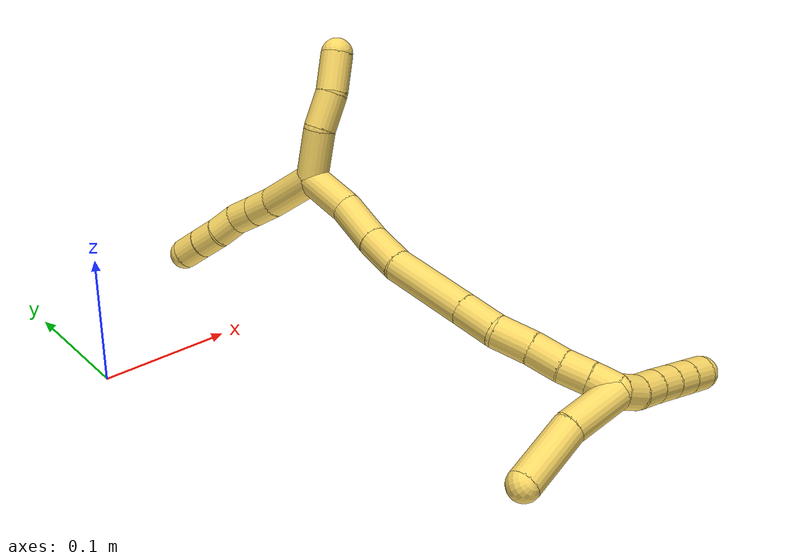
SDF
<sdf version="1.7">
 <world name="default">
  <model name="5">
   <static>0</static>
   <link name="5">
    <collision name="collision-cylinder-e_1_2_8">
     <pose>-0.002248 0.002984 -0.023393 -3.0147 -0.095018 1.28493</pose>
     <geometry><cylinder><radius>0.0125</radius><length>0.047379</length></cylinder></geometry>
     <surface>
      <friction><ode><mu>1.16</mu><mu2>1.16</mu2><slip1>0</slip1><slip2>0</slip2></ode></friction>
      <contact><ode><kp>1e+06</kp><kd>1</kd><max_vel>0</max_vel><min_depth>0.001</min_depth></ode></contact>
     </surface>
    </collision>
    <visual name="visual-cylinder-e_1_2_8">
     <pose>-0.002248 0.002984 -0.023393 -3.0147 -0.095018 1.28493</pose>
     <geometry><cylinder><radius>0.0125</radius><length>0.047379</length></cylinder></geometry>
     <material><ambient>1 0.858824 0.4 1</ambient></material>
    </visual>
    <collision name="collision-cylinder-e_2_8_9">
     <pose>-0.006379 0.008098 -0.057005 -2.93617 -0.178581 1.43037</pose>
     <geometry><cylinder><radius>0.0125</radius><length>0.021214</length></cylinder></geometry>
     <surface>
      <friction><ode><mu>1.16</mu><mu2>1.16</mu2><slip1>0</slip1><slip2>0</slip2></ode></friction>
      <contact><ode><kp>1e+06</kp><kd>1</kd><max_vel>0</max_vel><min_depth>0.001</min_depth></ode></contact>
     </surface>
    </collision>
    <visual name="visual-cylinder-e_2_8_9">
     <pose>-0.006379 0.008098 -0.057005 -2.93617 -0.178581 1.43037</pose>
     <geometry><cylinder><radius>0.0125</radius><length>0.021214</length></cylinder></geometry>
     <material><ambient>1 0.858824 0.4 1</ambient></material>
    </visual>
    <collision name="collision-cylinder-e_3_9_10">
     <pose>-0.010156 0.012506 -0.076856 -2.90923 -0.188932 1.36384</pose>
     <geometry><cylinder><radius>0.0125</radius><length>0.020153</length></cylinder></geometry>
     <surface>
      <friction><ode><mu>1.16</mu><mu2>1.16</mu2><slip1>0</slip1><slip2>0</slip2></ode></friction>
      <contact><ode><kp>1e+06</kp><kd>1</kd><max_vel>0</max_vel><min_depth>0.001</min_depth></ode></contact>
     </surface>
    </collision>
    <visual name="visual-cylinder-e_3_9_10">
     <pose>-0.010156 0.012506 -0.076856 -2.90923 -0.188932 1.36384</pose>
     <geometry><cylinder><radius>0.0125</radius><length>0.020153</length></cylinder></geometry>
     <material><ambient>1 0.858824 0.4 1</ambient></material>
    </visual>
    <collision name="collision-cylinder-e_4_10_11">
     <pose>-0.016479 0.015351 -0.095901 -3.08163 -0.439172 2.87445</pose>
     <geometry><cylinder><radius>0.0125</radius><length>0.020839</length></cylinder></geometry>
     <surface>
      <friction><ode><mu>1.16</mu><mu2>1.16</mu2><slip1>0</slip1><slip2>0</slip2></ode></friction>
      <contact><ode><kp>1e+06</kp><kd>1</kd><max_vel>0</max_vel><min_depth>0.001</min_depth></ode></contact>
     </surface>
    </collision>
    <visual name="visual-cylinder-e_4_10_11">
     <pose>-0.016479 0.015351 -0.095901 -3.08163 -0.439172 2.87445</pose>
     <geometry><cylinder><radius>0.0125</radius><length>0.020839</length></cylinder></geometry>
     <material><ambient>1 0.858824 0.4 1</ambient></material>
    </visual>
    <collision name="collision-cylinder-e_5_11_12">
     <pose>-0.023748 0.017224 -0.114874 -3.00556 -0.286123 2.25808</pose>
     <geometry><cylinder><radius>0.0125</radius><length>0.020114</length></cylinder></geometry>
     <surface>
      <friction><ode><mu>1.16</mu><mu2>1.16</mu2><slip1>0</slip1><slip2>0</slip2></ode></friction>
      <contact><ode><kp>1e+06</kp><kd>1</kd><max_vel>0</max_vel><min_depth>0.001</min_depth></ode></contact>
     </surface>
    </collision>
    <visual name="visual-cylinder-e_5_11_12">
     <pose>-0.023748 0.017224 -0.114874 -3.00556 -0.286123 2.25808</pose>
     <geometry><cylinder><radius>0.0125</radius><length>0.020114</length></cylinder></geometry>
     <material><ambient>1 0.858824 0.4 1</ambient></material>
    </visual>
    <collision name="collision-cylinder-e_6_12_6">
     <pose>-0.029067 0.019724 -0.134202 -3.02022 -0.246904 2.23088</pose>
     <geometry><cylinder><radius>0.0125</radius><length>0.0203</length></cylinder></geometry>
     <surface>
      <friction><ode><mu>1.16</mu><mu2>1.16</mu2><slip1>0</slip1><slip2>0</slip2></ode></friction>
      <contact><ode><kp>1e+06</kp><kd>1</kd><max_vel>0</max_vel><min_depth>0.001</min_depth></ode></contact>
     </surface>
    </collision>
    <visual name="visual-cylinder-e_6_12_6">
     <pose>-0.029067 0.019724 -0.134202 -3.02022 -0.246904 2.23088</pose>
     <geometry><cylinder><radius>0.0125</radius><length>0.0203</length></cylinder></geometry>
     <material><ambient>1 0.858824 0.4 1</ambient></material>
    </visual>
    <collision name="collision-cylinder-e_1_2_13">
     <pose>0.007239 0.012701 0.013339 -0.760869 0.374468 -0.151242</pose>
     <geometry><cylinder><radius>0.0125</radius><length>0.03958</length></cylinder></geometry>
     <surface>
      <friction><ode><mu>1.16</mu><mu2>1.16</mu2><slip1>0</slip1><slip2>0</slip2></ode></friction>
      <contact><ode><kp>1e+06</kp><kd>1</kd><max_vel>0</max_vel><min_depth>0.001</min_depth></ode></contact>
     </surface>
    </collision>
    <visual name="visual-cylinder-e_1_2_13">
     <pose>0.007239 0.012701 0.013339 -0.760869 0.374468 -0.151242</pose>
     <geometry><cylinder><radius>0.0125</radius><length>0.03958</length></cylinder></geometry>
     <material><ambient>1 0.858824 0.4 1</ambient></material>
    </visual>
    <collision name="collision-cylinder-e_2_13_14">
     <pose>0.023501 0.033175 0.035219 -0.738451 0.663288 -0.264957</pose>
     <geometry><cylinder><radius>0.0125</radius><length>0.029311</length></cylinder></geometry>
     <surface>
      <friction><ode><mu>1.16</mu><mu2>1.16</mu2><slip1>0</slip1><slip2>0</slip2></ode></friction>
      <contact><ode><kp>1e+06</kp><kd>1</kd><max_vel>0</max_vel><min_depth>0.001</min_depth></ode></contact>
     </surface>
    </collision>
    <visual name="visual-cylinder-e_2_13_14">
     <pose>0.023501 0.033175 0.035219 -0.738451 0.663288 -0.264957</pose>
     <geometry><cylinder><radius>0.0125</radius><length>0.029311</length></cylinder></geometry>
     <material><ambient>1 0.858824 0.4 1</ambient></material>
    </visual>
    <collision name="collision-cylinder-e_3_14_5">
     <pose>0.042118 0.051453 0.050048 -1.03135 0.664653 -0.38638</pose>
     <geometry><cylinder><radius>0.0125</radius><length>0.031109</length></cylinder></geometry>
     <surface>
      <friction><ode><mu>1.16</mu><mu2>1.16</mu2><slip1>0</slip1><slip2>0</slip2></ode></friction>
      <contact><ode><kp>1e+06</kp><kd>1</kd><max_vel>0</max_vel><min_depth>0.001</min_depth></ode></contact>
     </surface>
    </collision>
    <visual name="visual-cylinder-e_3_14_5">
     <pose>0.042118 0.051453 0.050048 -1.03135 0.664653 -0.38638</pose>
     <geometry><cylinder><radius>0.0125</radius><length>0.031109</length></cylinder></geometry>
     <material><ambient>1 0.858824 0.4 1</ambient></material>
    </visual>
    <collision name="collision-cylinder-e_1_2_15">
     <pose>-0.003218 -0.017258 0.008046 1.13454 -0.167401 -0.106804</pose>
     <geometry><cylinder><radius>0.0125</radius><length>0.038622</length></cylinder></geometry>
     <surface>
      <friction><ode><mu>1.16</mu><mu2>1.16</mu2><slip1>0</slip1><slip2>0</slip2></ode></friction>
      <contact><ode><kp>1e+06</kp><kd>1</kd><max_vel>0</max_vel><min_depth>0.001</min_depth></ode></contact>
     </surface>
    </collision>
    <visual name="visual-cylinder-e_1_2_15">
     <pose>-0.003218 -0.017258 0.008046 1.13454 -0.167401 -0.106804</pose>
     <geometry><cylinder><radius>0.0125</radius><length>0.038622</length></cylinder></geometry>
     <material><ambient>1 0.858824 0.4 1</ambient></material>
    </visual>
    <collision name="collision-cylinder-e_2_15_16">
     <pose>-0.015082 -0.050379 0.025121 1.05333 -0.442399 -0.260034</pose>
     <geometry><cylinder><radius>0.0125</radius><length>0.040394</length></cylinder></geometry>
     <surface>
      <friction><ode><mu>1.16</mu><mu2>1.16</mu2><slip1>0</slip1><slip2>0</slip2></ode></friction>
      <contact><ode><kp>1e+06</kp><kd>1</kd><max_vel>0</max_vel><min_depth>0.001</min_depth></ode></contact>
     </surface>
    </collision>
    <visual name="visual-cylinder-e_2_15_16">
     <pose>-0.015082 -0.050379 0.025121 1.05333 -0.442399 -0.260034</pose>
     <geometry><cylinder><radius>0.0125</radius><length>0.040394</length></cylinder></geometry>
     <material><ambient>1 0.858824 0.4 1</ambient></material>
    </visual>
    <collision name="collision-cylinder-e_3_16_17">
     <pose>-0.029298 -0.078412 0.041853 1.00655 -0.368968 -0.204757</pose>
     <geometry><cylinder><radius>0.0125</radius><length>0.030885</length></cylinder></geometry>
     <surface>
      <friction><ode><mu>1.16</mu><mu2>1.16</mu2><slip1>0</slip1><slip2>0</slip2></ode></friction>
      <contact><ode><kp>1e+06</kp><kd>1</kd><max_vel>0</max_vel><min_depth>0.001</min_depth></ode></contact>
     </surface>
    </collision>
    <visual name="visual-cylinder-e_3_16_17">
     <pose>-0.029298 -0.078412 0.041853 1.00655 -0.368968 -0.204757</pose>
     <geometry><cylinder><radius>0.0125</radius><length>0.030885</length></cylinder></geometry>
     <material><ambient>1 0.858824 0.4 1</ambient></material>
    </visual>
    <collision name="collision-cylinder-e_4_17_18">
     <pose>-0.041563 -0.116683 0.068473 0.943605 -0.20479 -0.104762</pose>
     <geometry><cylinder><radius>0.0125</radius><length>0.065845</length></cylinder></geometry>
     <surface>
      <friction><ode><mu>1.16</mu><mu2>1.16</mu2><slip1>0</slip1><slip2>0</slip2></ode></friction>
      <contact><ode><kp>1e+06</kp><kd>1</kd><max_vel>0</max_vel><min_depth>0.001</min_depth></ode></contact>
     </surface>
    </collision>
    <visual name="visual-cylinder-e_4_17_18">
     <pose>-0.041563 -0.116683 0.068473 0.943605 -0.20479 -0.104762</pose>
     <geometry><cylinder><radius>0.0125</radius><length>0.065845</length></cylinder></geometry>
     <material><ambient>1 0.858824 0.4 1</ambient></material>
    </visual>
    <collision name="collision-cylinder-e_5_18_19">
     <pose>-0.05139 -0.154825 0.096126 0.943256 -0.207505 -0.106112</pose>
     <geometry><cylinder><radius>0.0125</radius><length>0.030408</length></cylinder></geometry>
     <surface>
      <friction><ode><mu>1.16</mu><mu2>1.16</mu2><slip1>0</slip1><slip2>0</slip2></ode></friction>
      <contact><ode><kp>1e+06</kp><kd>1</kd><max_vel>0</max_vel><min_depth>0.001</min_depth></ode></contact>
     </surface>
    </collision>
    <visual name="visual-cylinder-e_5_18_19">
     <pose>-0.05139 -0.154825 0.096126 0.943256 -0.207505 -0.106112</pose>
     <geometry><cylinder><radius>0.0125</radius><length>0.030408</length></cylinder></geometry>
     <material><ambient>1 0.858824 0.4 1</ambient></material>
    </visual>
    <collision name="collision-cylinder-e_6_19_20">
     <pose>-0.053695 -0.178744 0.112387 1.00602 0.058787 0.032352</pose>
     <geometry><cylinder><radius>0.0125</radius><length>0.028167</length></cylinder></geometry>
     <surface>
      <friction><ode><mu>1.16</mu><mu2>1.16</mu2><slip1>0</slip1><slip2>0</slip2></ode></friction>
      <contact><ode><kp>1e+06</kp><kd>1</kd><max_vel>0</max_vel><min_depth>0.001</min_depth></ode></contact>
     </surface>
    </collision>
    <visual name="visual-cylinder-e_6_19_20">
     <pose>-0.053695 -0.178744 0.112387 1.00602 0.058787 0.032352</pose>
     <geometry><cylinder><radius>0.0125</radius><length>0.028167</length></cylinder></geometry>
     <material><ambient>1 0.858824 0.4 1</ambient></material>
    </visual>
    <collision name="collision-cylinder-e_7_20_21">
     <pose>-0.053161 -0.201243 0.126157 1.03931 -0.023789 -0.01361</pose>
     <geometry><cylinder><radius>0.0125</radius><length>0.024651</length></cylinder></geometry>
     <surface>
      <friction><ode><mu>1.16</mu><mu2>1.16</mu2><slip1>0</slip1><slip2>0</slip2></ode></friction>
      <contact><ode><kp>1e+06</kp><kd>1</kd><max_vel>0</max_vel><min_depth>0.001</min_depth></ode></contact>
     </surface>
    </collision>
    <visual name="visual-cylinder-e_7_20_21">
     <pose>-0.053161 -0.201243 0.126157 1.03931 -0.023789 -0.01361</pose>
     <geometry><cylinder><radius>0.0125</radius><length>0.024651</length></cylinder></geometry>
     <material><ambient>1 0.858824 0.4 1</ambient></material>
    </visual>
    <collision name="collision-cylinder-e_8_21_22">
     <pose>-0.052643 -0.220559 0.13807 0.992999 0.07797 0.042257</pose>
     <geometry><cylinder><radius>0.0125</radius><length>0.020821</length></cylinder></geometry>
     <surface>
      <friction><ode><mu>1.16</mu><mu2>1.16</mu2><slip1>0</slip1><slip2>0</slip2></ode></friction>
      <contact><ode><kp>1e+06</kp><kd>1</kd><max_vel>0</max_vel><min_depth>0.001</min_depth></ode></contact>
     </surface>
    </collision>
    <visual name="visual-cylinder-e_8_21_22">
     <pose>-0.052643 -0.220559 0.13807 0.992999 0.07797 0.042257</pose>
     <geometry><cylinder><radius>0.0125</radius><length>0.020821</length></cylinder></geometry>
     <material><ambient>1 0.858824 0.4 1</ambient></material>
    </visual>
    <collision name="collision-cylinder-e_9_22_1">
     <pose>-0.051234 -0.237911 0.148911 1.03236 0.059233 0.033621</pose>
     <geometry><cylinder><radius>0.0125</radius><length>0.020207</length></cylinder></geometry>
     <surface>
      <friction><ode><mu>1.16</mu><mu2>1.16</mu2><slip1>0</slip1><slip2>0</slip2></ode></friction>
      <contact><ode><kp>1e+06</kp><kd>1</kd><max_vel>0</max_vel><min_depth>0.001</min_depth></ode></contact>
     </surface>
    </collision>
    <visual name="visual-cylinder-e_9_22_1">
     <pose>-0.051234 -0.237911 0.148911 1.03236 0.059233 0.033621</pose>
     <geometry><cylinder><radius>0.0125</radius><length>0.020207</length></cylinder></geometry>
     <material><ambient>1 0.858824 0.4 1</ambient></material>
    </visual>
    <collision name="collision-cylinder-e_1_1_23">
     <pose>-0.072128 -0.243565 0.146521 -2.76338 -1.20888 2.60094</pose>
     <geometry><cylinder><radius>0.0125</radius><length>0.045963</length></cylinder></geometry>
     <surface>
      <friction><ode><mu>1.16</mu><mu2>1.16</mu2><slip1>0</slip1><slip2>0</slip2></ode></friction>
      <contact><ode><kp>1e+06</kp><kd>1</kd><max_vel>0</max_vel><min_depth>0.001</min_depth></ode></contact>
     </surface>
    </collision>
    <visual name="visual-cylinder-e_1_1_23">
     <pose>-0.072128 -0.243565 0.146521 -2.76338 -1.20888 2.60094</pose>
     <geometry><cylinder><radius>0.0125</radius><length>0.045963</length></cylinder></geometry>
     <material><ambient>1 0.858824 0.4 1</ambient></material>
    </visual>
    <collision name="collision-cylinder-e_2_23_4">
     <pose>-0.119887 -0.242263 0.132858 2.86949 -1.33417 -2.79737</pose>
     <geometry><cylinder><radius>0.0125</radius><length>0.054037</length></cylinder></geometry>
     <surface>
      <friction><ode><mu>1.16</mu><mu2>1.16</mu2><slip1>0</slip1><slip2>0</slip2></ode></friction>
      <contact><ode><kp>1e+06</kp><kd>1</kd><max_vel>0</max_vel><min_depth>0.001</min_depth></ode></contact>
     </surface>
    </collision>
    <visual name="visual-cylinder-e_2_23_4">
     <pose>-0.119887 -0.242263 0.132858 2.86949 -1.33417 -2.79737</pose>
     <geometry><cylinder><radius>0.0125</radius><length>0.054037</length></cylinder></geometry>
     <material><ambient>1 0.858824 0.4 1</ambient></material>
    </visual>
    <collision name="collision-cylinder-e_1_1_24">
     <pose>-0.042615 -0.252461 0.153101 1.73585 0.930744 1.0701</pose>
     <geometry><cylinder><radius>0.0125</radius><length>0.02</length></cylinder></geometry>
     <surface>
      <friction><ode><mu>1.16</mu><mu2>1.16</mu2><slip1>0</slip1><slip2>0</slip2></ode></friction>
      <contact><ode><kp>1e+06</kp><kd>1</kd><max_vel>0</max_vel><min_depth>0.001</min_depth></ode></contact>
     </surface>
    </collision>
    <visual name="visual-cylinder-e_1_1_24">
     <pose>-0.042615 -0.252461 0.153101 1.73585 0.930744 1.0701</pose>
     <geometry><cylinder><radius>0.0125</radius><length>0.02</length></cylinder></geometry>
     <material><ambient>1 0.858824 0.4 1</ambient></material>
    </visual>
    <collision name="collision-cylinder-e_2_24_25">
     <pose>-0.02536 -0.262114 0.151369 1.76773 1.17709 1.36616</pose>
     <geometry><cylinder><radius>0.0125</radius><length>0.02</length></cylinder></geometry>
     <surface>
      <friction><ode><mu>1.16</mu><mu2>1.16</mu2><slip1>0</slip1><slip2>0</slip2></ode></friction>
      <contact><ode><kp>1e+06</kp><kd>1</kd><max_vel>0</max_vel><min_depth>0.001</min_depth></ode></contact>
     </surface>
    </collision>
    <visual name="visual-cylinder-e_2_24_25">
     <pose>-0.02536 -0.262114 0.151369 1.76773 1.17709 1.36616</pose>
     <geometry><cylinder><radius>0.0125</radius><length>0.02</length></cylinder></geometry>
     <material><ambient>1 0.858824 0.4 1</ambient></material>
    </visual>
    <collision name="collision-cylinder-e_3_25_26">
     <pose>-0.007018 -0.26996 0.149993 1.72276 1.14495 1.28787</pose>
     <geometry><cylinder><radius>0.0125</radius><length>0.02</length></cylinder></geometry>
     <surface>
      <friction><ode><mu>1.16</mu><mu2>1.16</mu2><slip1>0</slip1><slip2>0</slip2></ode></friction>
      <contact><ode><kp>1e+06</kp><kd>1</kd><max_vel>0</max_vel><min_depth>0.001</min_depth></ode></contact>
     </surface>
    </collision>
    <visual name="visual-cylinder-e_3_25_26">
     <pose>-0.007018 -0.26996 0.149993 1.72276 1.14495 1.28787</pose>
     <geometry><cylinder><radius>0.0125</radius><length>0.02</length></cylinder></geometry>
     <material><ambient>1 0.858824 0.4 1</ambient></material>
    </visual>
    <collision name="collision-cylinder-e_4_26_27">
     <pose>0.011195 -0.278129 0.14875 1.72081 1.14476 1.28577</pose>
     <geometry><cylinder><radius>0.0125</radius><length>0.02</length></cylinder></geometry>
     <surface>
      <friction><ode><mu>1.16</mu><mu2>1.16</mu2><slip1>0</slip1><slip2>0</slip2></ode></friction>
      <contact><ode><kp>1e+06</kp><kd>1</kd><max_vel>0</max_vel><min_depth>0.001</min_depth></ode></contact>
     </surface>
    </collision>
    <visual name="visual-cylinder-e_4_26_27">
     <pose>0.011195 -0.278129 0.14875 1.72081 1.14476 1.28577</pose>
     <geometry><cylinder><radius>0.0125</radius><length>0.02</length></cylinder></geometry>
     <material><ambient>1 0.858824 0.4 1</ambient></material>
    </visual>
    <collision name="collision-cylinder-e_5_27_3">
     <pose>0.029413 -0.286279 0.147454 1.73618 1.1461 1.30216</pose>
     <geometry><cylinder><radius>0.0125</radius><length>0.02</length></cylinder></geometry>
     <surface>
      <friction><ode><mu>1.16</mu><mu2>1.16</mu2><slip1>0</slip1><slip2>0</slip2></ode></friction>
      <contact><ode><kp>1e+06</kp><kd>1</kd><max_vel>0</max_vel><min_depth>0.001</min_depth></ode></contact>
     </surface>
    </collision>
    <visual name="visual-cylinder-e_5_27_3">
     <pose>0.029413 -0.286279 0.147454 1.73618 1.1461 1.30216</pose>
     <geometry><cylinder><radius>0.0125</radius><length>0.02</length></cylinder></geometry>
     <material><ambient>1 0.858824 0.4 1</ambient></material>
    </visual>
    <collision name="collision-sphere-3">
     <pose>0.038525 -0.290344 0.146776 0 -0 0</pose>
     <geometry><sphere><radius>0.0125</radius></sphere></geometry>
     <surface>
      <friction><ode><mu>1.16</mu><mu2>1.16</mu2><slip1>0</slip1><slip2>0</slip2></ode></friction>
      <contact><ode><kp>1e+06</kp><kd>1</kd><max_vel>0</max_vel><min_depth>0.001</min_depth></ode></contact>
     </surface>
    </collision>
    <visual name="visual-sphere-3">
     <pose>0.038525 -0.290344 0.146776 0 -0 0</pose>
     <geometry><sphere><radius>0.0125</radius></sphere></geometry>
     <material><ambient>1 0.858824 0.4 1</ambient></material>
    </visual>
    <collision name="collision-sphere-27">
     <pose>0.020301 -0.282215 0.148133 0 -0 0</pose>
     <geometry><sphere><radius>0.0125</radius></sphere></geometry>
     <surface>
      <friction><ode><mu>1.16</mu><mu2>1.16</mu2><slip1>0</slip1><slip2>0</slip2></ode></friction>
      <contact><ode><kp>1e+06</kp><kd>1</kd><max_vel>0</max_vel><min_depth>0.001</min_depth></ode></contact>
     </surface>
    </collision>
    <visual name="visual-sphere-27">
     <pose>0.020301 -0.282215 0.148133 0 -0 0</pose>
     <geometry><sphere><radius>0.0125</radius></sphere></geometry>
     <material><ambient>1 0.858824 0.4 1</ambient></material>
    </visual>
    <collision name="collision-sphere-26">
     <pose>0.002089 -0.274043 0.149368 0 -0 0</pose>
     <geometry><sphere><radius>0.0125</radius></sphere></geometry>
     <surface>
      <friction><ode><mu>1.16</mu><mu2>1.16</mu2><slip1>0</slip1><slip2>0</slip2></ode></friction>
      <contact><ode><kp>1e+06</kp><kd>1</kd><max_vel>0</max_vel><min_depth>0.001</min_depth></ode></contact>
     </surface>
    </collision>
    <visual name="visual-sphere-26">
     <pose>0.002089 -0.274043 0.149368 0 -0 0</pose>
     <geometry><sphere><radius>0.0125</radius></sphere></geometry>
     <material><ambient>1 0.858824 0.4 1</ambient></material>
    </visual>
    <collision name="collision-sphere-25">
     <pose>-0.016125 -0.265876 0.150619 0 -0 0</pose>
     <geometry><sphere><radius>0.0125</radius></sphere></geometry>
     <surface>
      <friction><ode><mu>1.16</mu><mu2>1.16</mu2><slip1>0</slip1><slip2>0</slip2></ode></friction>
      <contact><ode><kp>1e+06</kp><kd>1</kd><max_vel>0</max_vel><min_depth>0.001</min_depth></ode></contact>
     </surface>
    </collision>
    <visual name="visual-sphere-25">
     <pose>-0.016125 -0.265876 0.150619 0 -0 0</pose>
     <geometry><sphere><radius>0.0125</radius></sphere></geometry>
     <material><ambient>1 0.858824 0.4 1</ambient></material>
    </visual>
    <collision name="collision-sphere-24">
     <pose>-0.034595 -0.258352 0.15212 0 -0 0</pose>
     <geometry><sphere><radius>0.0125</radius></sphere></geometry>
     <surface>
      <friction><ode><mu>1.16</mu><mu2>1.16</mu2><slip1>0</slip1><slip2>0</slip2></ode></friction>
      <contact><ode><kp>1e+06</kp><kd>1</kd><max_vel>0</max_vel><min_depth>0.001</min_depth></ode></contact>
     </surface>
    </collision>
    <visual name="visual-sphere-24">
     <pose>-0.034595 -0.258352 0.15212 0 -0 0</pose>
     <geometry><sphere><radius>0.0125</radius></sphere></geometry>
     <material><ambient>1 0.858824 0.4 1</ambient></material>
    </visual>
    <collision name="collision-sphere-4">
     <pose>-0.146153 -0.243965 0.126757 0 -0 0</pose>
     <geometry><sphere><radius>0.0125</radius></sphere></geometry>
     <surface>
      <friction><ode><mu>1.16</mu><mu2>1.16</mu2><slip1>0</slip1><slip2>0</slip2></ode></friction>
      <contact><ode><kp>1e+06</kp><kd>1</kd><max_vel>0</max_vel><min_depth>0.001</min_depth></ode></contact>
     </surface>
    </collision>
    <visual name="visual-sphere-4">
     <pose>-0.146153 -0.243965 0.126757 0 -0 0</pose>
     <geometry><sphere><radius>0.0125</radius></sphere></geometry>
     <material><ambient>1 0.858824 0.4 1</ambient></material>
    </visual>
    <collision name="collision-sphere-23">
     <pose>-0.093621 -0.240561 0.138959 0 -0 0</pose>
     <geometry><sphere><radius>0.0125</radius></sphere></geometry>
     <surface>
      <friction><ode><mu>1.16</mu><mu2>1.16</mu2><slip1>0</slip1><slip2>0</slip2></ode></friction>
      <contact><ode><kp>1e+06</kp><kd>1</kd><max_vel>0</max_vel><min_depth>0.001</min_depth></ode></contact>
     </surface>
    </collision>
    <visual name="visual-sphere-23">
     <pose>-0.093621 -0.240561 0.138959 0 -0 0</pose>
     <geometry><sphere><radius>0.0125</radius></sphere></geometry>
     <material><ambient>1 0.858824 0.4 1</ambient></material>
    </visual>
    <collision name="collision-sphere-1">
     <pose>-0.050636 -0.24657 0.154082 0 -0 0</pose>
     <geometry><sphere><radius>0.0125</radius></sphere></geometry>
     <surface>
      <friction><ode><mu>1.16</mu><mu2>1.16</mu2><slip1>0</slip1><slip2>0</slip2></ode></friction>
      <contact><ode><kp>1e+06</kp><kd>1</kd><max_vel>0</max_vel><min_depth>0.001</min_depth></ode></contact>
     </surface>
    </collision>
    <visual name="visual-sphere-1">
     <pose>-0.050636 -0.24657 0.154082 0 -0 0</pose>
     <geometry><sphere><radius>0.0125</radius></sphere></geometry>
     <material><ambient>1 0.858824 0.4 1</ambient></material>
    </visual>
    <collision name="collision-sphere-22">
     <pose>-0.051832 -0.229253 0.143739 0 -0 0</pose>
     <geometry><sphere><radius>0.0125</radius></sphere></geometry>
     <surface>
      <friction><ode><mu>1.16</mu><mu2>1.16</mu2><slip1>0</slip1><slip2>0</slip2></ode></friction>
      <contact><ode><kp>1e+06</kp><kd>1</kd><max_vel>0</max_vel><min_depth>0.001</min_depth></ode></contact>
     </surface>
    </collision>
    <visual name="visual-sphere-22">
     <pose>-0.051832 -0.229253 0.143739 0 -0 0</pose>
     <geometry><sphere><radius>0.0125</radius></sphere></geometry>
     <material><ambient>1 0.858824 0.4 1</ambient></material>
    </visual>
    <collision name="collision-sphere-21">
     <pose>-0.053454 -0.211865 0.132402 0 -0 0</pose>
     <geometry><sphere><radius>0.0125</radius></sphere></geometry>
     <surface>
      <friction><ode><mu>1.16</mu><mu2>1.16</mu2><slip1>0</slip1><slip2>0</slip2></ode></friction>
      <contact><ode><kp>1e+06</kp><kd>1</kd><max_vel>0</max_vel><min_depth>0.001</min_depth></ode></contact>
     </surface>
    </collision>
    <visual name="visual-sphere-21">
     <pose>-0.053454 -0.211865 0.132402 0 -0 0</pose>
     <geometry><sphere><radius>0.0125</radius></sphere></geometry>
     <material><ambient>1 0.858824 0.4 1</ambient></material>
    </visual>
    <collision name="collision-sphere-12">
     <pose>-0.026586 0.018533 -0.124433 0 -0 0</pose>
     <geometry><sphere><radius>0.0125</radius></sphere></geometry>
     <surface>
      <friction><ode><mu>1.16</mu><mu2>1.16</mu2><slip1>0</slip1><slip2>0</slip2></ode></friction>
      <contact><ode><kp>1e+06</kp><kd>1</kd><max_vel>0</max_vel><min_depth>0.001</min_depth></ode></contact>
     </surface>
    </collision>
    <visual name="visual-sphere-12">
     <pose>-0.026586 0.018533 -0.124433 0 -0 0</pose>
     <geometry><sphere><radius>0.0125</radius></sphere></geometry>
     <material><ambient>1 0.858824 0.4 1</ambient></material>
    </visual>
    <collision name="collision-sphere-11">
     <pose>-0.020909 0.015916 -0.105315 0 -0 0</pose>
     <geometry><sphere><radius>0.0125</radius></sphere></geometry>
     <surface>
      <friction><ode><mu>1.16</mu><mu2>1.16</mu2><slip1>0</slip1><slip2>0</slip2></ode></friction>
      <contact><ode><kp>1e+06</kp><kd>1</kd><max_vel>0</max_vel><min_depth>0.001</min_depth></ode></contact>
     </surface>
    </collision>
    <visual name="visual-sphere-11">
     <pose>-0.020909 0.015916 -0.105315 0 -0 0</pose>
     <geometry><sphere><radius>0.0125</radius></sphere></geometry>
     <material><ambient>1 0.858824 0.4 1</ambient></material>
    </visual>
    <collision name="collision-sphere-10">
     <pose>-0.012048 0.014785 -0.086487 0 -0 0</pose>
     <geometry><sphere><radius>0.0125</radius></sphere></geometry>
     <surface>
      <friction><ode><mu>1.16</mu><mu2>1.16</mu2><slip1>0</slip1><slip2>0</slip2></ode></friction>
      <contact><ode><kp>1e+06</kp><kd>1</kd><max_vel>0</max_vel><min_depth>0.001</min_depth></ode></contact>
     </surface>
    </collision>
    <visual name="visual-sphere-10">
     <pose>-0.012048 0.014785 -0.086487 0 -0 0</pose>
     <geometry><sphere><radius>0.0125</radius></sphere></geometry>
     <material><ambient>1 0.858824 0.4 1</ambient></material>
    </visual>
    <collision name="collision-sphere-9">
     <pose>-0.008263 0.010227 -0.067224 0 -0 0</pose>
     <geometry><sphere><radius>0.0125</radius></sphere></geometry>
     <surface>
      <friction><ode><mu>1.16</mu><mu2>1.16</mu2><slip1>0</slip1><slip2>0</slip2></ode></friction>
      <contact><ode><kp>1e+06</kp><kd>1</kd><max_vel>0</max_vel><min_depth>0.001</min_depth></ode></contact>
     </surface>
    </collision>
    <visual name="visual-sphere-9">
     <pose>-0.008263 0.010227 -0.067224 0 -0 0</pose>
     <geometry><sphere><radius>0.0125</radius></sphere></geometry>
     <material><ambient>1 0.858824 0.4 1</ambient></material>
    </visual>
    <collision name="collision-sphere-2">
     <geometry><sphere><radius>0.0125</radius></sphere></geometry>
     <surface>
      <friction><ode><mu>1.16</mu><mu2>1.16</mu2><slip1>0</slip1><slip2>0</slip2></ode></friction>
      <contact><ode><kp>1e+06</kp><kd>1</kd><max_vel>0</max_vel><min_depth>0.001</min_depth></ode></contact>
     </surface>
    </collision>
    <visual name="visual-sphere-2">
     <geometry><sphere><radius>0.0125</radius></sphere></geometry>
     <material><ambient>1 0.858824 0.4 1</ambient></material>
    </visual>
    <collision name="collision-sphere-19">
     <pose>-0.054522 -0.166869 0.104862 0 -0 0</pose>
     <geometry><sphere><radius>0.0125</radius></sphere></geometry>
     <surface>
      <friction><ode><mu>1.16</mu><mu2>1.16</mu2><slip1>0</slip1><slip2>0</slip2></ode></friction>
      <contact><ode><kp>1e+06</kp><kd>1</kd><max_vel>0</max_vel><min_depth>0.001</min_depth></ode></contact>
     </surface>
    </collision>
    <visual name="visual-sphere-19">
     <pose>-0.054522 -0.166869 0.104862 0 -0 0</pose>
     <geometry><sphere><radius>0.0125</radius></sphere></geometry>
     <material><ambient>1 0.858824 0.4 1</ambient></material>
    </visual>
    <collision name="collision-sphere-8">
     <pose>-0.004495 0.005969 -0.046787 0 -0 0</pose>
     <geometry><sphere><radius>0.0125</radius></sphere></geometry>
     <surface>
      <friction><ode><mu>1.16</mu><mu2>1.16</mu2><slip1>0</slip1><slip2>0</slip2></ode></friction>
      <contact><ode><kp>1e+06</kp><kd>1</kd><max_vel>0</max_vel><min_depth>0.001</min_depth></ode></contact>
     </surface>
    </collision>
    <visual name="visual-sphere-8">
     <pose>-0.004495 0.005969 -0.046787 0 -0 0</pose>
     <geometry><sphere><radius>0.0125</radius></sphere></geometry>
     <material><ambient>1 0.858824 0.4 1</ambient></material>
    </visual>
    <collision name="collision-sphere-6">
     <pose>-0.031547 0.020916 -0.143972 0 -0 0</pose>
     <geometry><sphere><radius>0.0125</radius></sphere></geometry>
     <surface>
      <friction><ode><mu>1.16</mu><mu2>1.16</mu2><slip1>0</slip1><slip2>0</slip2></ode></friction>
      <contact><ode><kp>1e+06</kp><kd>1</kd><max_vel>0</max_vel><min_depth>0.001</min_depth></ode></contact>
     </surface>
    </collision>
    <visual name="visual-sphere-6">
     <pose>-0.031547 0.020916 -0.143972 0 -0 0</pose>
     <geometry><sphere><radius>0.0125</radius></sphere></geometry>
     <material><ambient>1 0.858824 0.4 1</ambient></material>
    </visual>
    <collision name="collision-sphere-13">
     <pose>0.014478 0.025401 0.026679 0 -0 0</pose>
     <geometry><sphere><radius>0.0125</radius></sphere></geometry>
     <surface>
      <friction><ode><mu>1.16</mu><mu2>1.16</mu2><slip1>0</slip1><slip2>0</slip2></ode></friction>
      <contact><ode><kp>1e+06</kp><kd>1</kd><max_vel>0</max_vel><min_depth>0.001</min_depth></ode></contact>
     </surface>
    </collision>
    <visual name="visual-sphere-13">
     <pose>0.014478 0.025401 0.026679 0 -0 0</pose>
     <geometry><sphere><radius>0.0125</radius></sphere></geometry>
     <material><ambient>1 0.858824 0.4 1</ambient></material>
    </visual>
    <collision name="collision-sphere-14">
     <pose>0.032524 0.040948 0.043759 0 -0 0</pose>
     <geometry><sphere><radius>0.0125</radius></sphere></geometry>
     <surface>
      <friction><ode><mu>1.16</mu><mu2>1.16</mu2><slip1>0</slip1><slip2>0</slip2></ode></friction>
      <contact><ode><kp>1e+06</kp><kd>1</kd><max_vel>0</max_vel><min_depth>0.001</min_depth></ode></contact>
     </surface>
    </collision>
    <visual name="visual-sphere-14">
     <pose>0.032524 0.040948 0.043759 0 -0 0</pose>
     <geometry><sphere><radius>0.0125</radius></sphere></geometry>
     <material><ambient>1 0.858824 0.4 1</ambient></material>
    </visual>
    <collision name="collision-sphere-5">
     <pose>0.051712 0.061958 0.056337 0 -0 0</pose>
     <geometry><sphere><radius>0.0125</radius></sphere></geometry>
     <surface>
      <friction><ode><mu>1.16</mu><mu2>1.16</mu2><slip1>0</slip1><slip2>0</slip2></ode></friction>
      <contact><ode><kp>1e+06</kp><kd>1</kd><max_vel>0</max_vel><min_depth>0.001</min_depth></ode></contact>
     </surface>
    </collision>
    <visual name="visual-sphere-5">
     <pose>0.051712 0.061958 0.056337 0 -0 0</pose>
     <geometry><sphere><radius>0.0125</radius></sphere></geometry>
     <material><ambient>1 0.858824 0.4 1</ambient></material>
    </visual>
    <collision name="collision-sphere-15">
     <pose>-0.006435 -0.034516 0.016092 0 -0 0</pose>
     <geometry><sphere><radius>0.0125</radius></sphere></geometry>
     <surface>
      <friction><ode><mu>1.16</mu><mu2>1.16</mu2><slip1>0</slip1><slip2>0</slip2></ode></friction>
      <contact><ode><kp>1e+06</kp><kd>1</kd><max_vel>0</max_vel><min_depth>0.001</min_depth></ode></contact>
     </surface>
    </collision>
    <visual name="visual-sphere-15">
     <pose>-0.006435 -0.034516 0.016092 0 -0 0</pose>
     <geometry><sphere><radius>0.0125</radius></sphere></geometry>
     <material><ambient>1 0.858824 0.4 1</ambient></material>
    </visual>
    <collision name="collision-sphere-16">
     <pose>-0.023729 -0.066242 0.03415 0 -0 0</pose>
     <geometry><sphere><radius>0.0125</radius></sphere></geometry>
     <surface>
      <friction><ode><mu>1.16</mu><mu2>1.16</mu2><slip1>0</slip1><slip2>0</slip2></ode></friction>
      <contact><ode><kp>1e+06</kp><kd>1</kd><max_vel>0</max_vel><min_depth>0.001</min_depth></ode></contact>
     </surface>
    </collision>
    <visual name="visual-sphere-16">
     <pose>-0.023729 -0.066242 0.03415 0 -0 0</pose>
     <geometry><sphere><radius>0.0125</radius></sphere></geometry>
     <material><ambient>1 0.858824 0.4 1</ambient></material>
    </visual>
    <collision name="collision-sphere-17">
     <pose>-0.034867 -0.090583 0.049556 0 -0 0</pose>
     <geometry><sphere><radius>0.0125</radius></sphere></geometry>
     <surface>
      <friction><ode><mu>1.16</mu><mu2>1.16</mu2><slip1>0</slip1><slip2>0</slip2></ode></friction>
      <contact><ode><kp>1e+06</kp><kd>1</kd><max_vel>0</max_vel><min_depth>0.001</min_depth></ode></contact>
     </surface>
    </collision>
    <visual name="visual-sphere-17">
     <pose>-0.034867 -0.090583 0.049556 0 -0 0</pose>
     <geometry><sphere><radius>0.0125</radius></sphere></geometry>
     <material><ambient>1 0.858824 0.4 1</ambient></material>
    </visual>
    <collision name="collision-sphere-18">
     <pose>-0.048258 -0.142782 0.087391 0 -0 0</pose>
     <geometry><sphere><radius>0.0125</radius></sphere></geometry>
     <surface>
      <friction><ode><mu>1.16</mu><mu2>1.16</mu2><slip1>0</slip1><slip2>0</slip2></ode></friction>
      <contact><ode><kp>1e+06</kp><kd>1</kd><max_vel>0</max_vel><min_depth>0.001</min_depth></ode></contact>
     </surface>
    </collision>
    <visual name="visual-sphere-18">
     <pose>-0.048258 -0.142782 0.087391 0 -0 0</pose>
     <geometry><sphere><radius>0.0125</radius></sphere></geometry>
     <material><ambient>1 0.858824 0.4 1</ambient></material>
    </visual>
    <collision name="collision-sphere-20">
     <pose>-0.052867 -0.19062 0.119912 0 -0 0</pose>
     <geometry><sphere><radius>0.0125</radius></sphere></geometry>
     <surface>
      <friction><ode><mu>1.16</mu><mu2>1.16</mu2><slip1>0</slip1><slip2>0</slip2></ode></friction>
      <contact><ode><kp>1e+06</kp><kd>1</kd><max_vel>0</max_vel><min_depth>0.001</min_depth></ode></contact>
     </surface>
    </collision>
    <visual name="visual-sphere-20">
     <pose>-0.052867 -0.19062 0.119912 0 -0 0</pose>
     <geometry><sphere><radius>0.0125</radius></sphere></geometry>
     <material><ambient>1 0.858824 0.4 1</ambient></material>
    </visual>
    <inertial>
     <pose>-0.027927 -0.111289 0.057804 0 -0 0</pose>
     <mass>0.75</mass>
     <inertia><ixx>6.7e-05</ixx><ixy>0</ixy><ixz>0</ixz><iyy>6.7e-05</iyy><iyz>0</iyz><izz>6.4e-05</izz></inertia>
    </inertial>
   </link>
   <pose>0.192818 0.005535 0.10363 0.768223 -0.092293 0.328685</pose>
  </model>
 </world>
</sdf>
